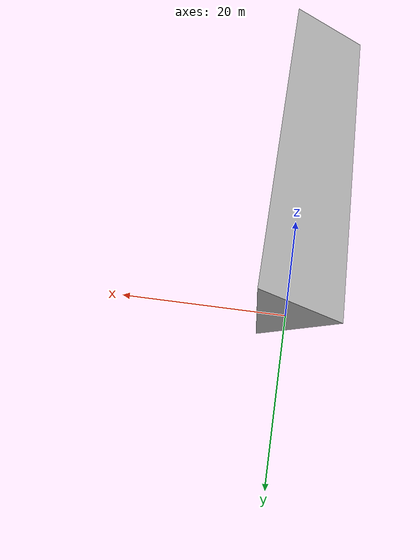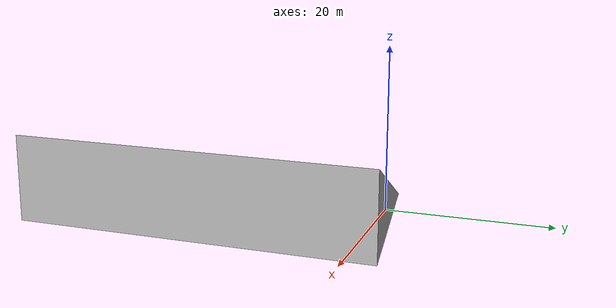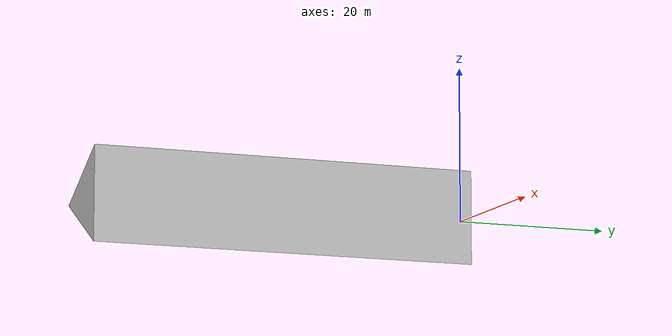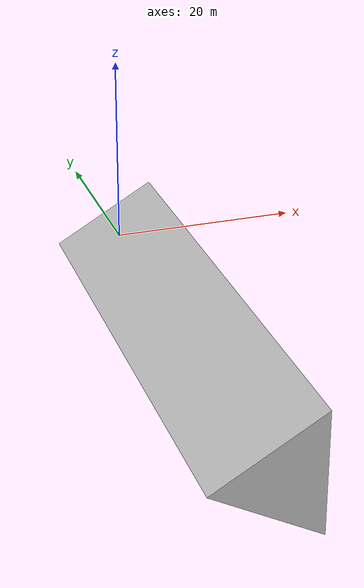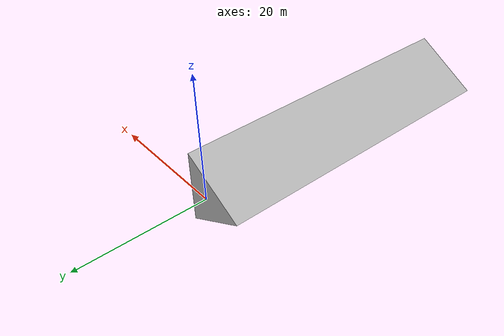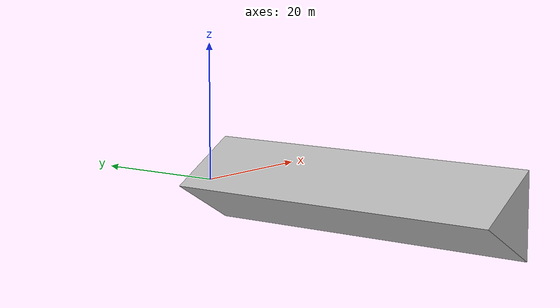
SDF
<?xml version='1.0' ?>
<sdf version="1.6">
    <model name="CubeSoft">
        <static>true</static>
        <link name="link">
            <pose>0 0 0 1.57 3.14159 0</pose>
            <collision name="collision">
                <geometry>
                    <mesh>
                        <uri>meshes/Triangle_12x12x10.stl</uri>
                        <scale>0.001 0.001 0.001</scale>
                    </mesh>
                </geometry>
            </collision>
            <visual name="visual">
                <geometry>
                    <mesh>
                        <uri>meshes/Triangle_12x12x10.stl</uri>
                        <scale>0.001 0.001 0.005</scale>
                    </mesh>
                </geometry>
            </visual>
        </link>
    </model>
</sdf>
